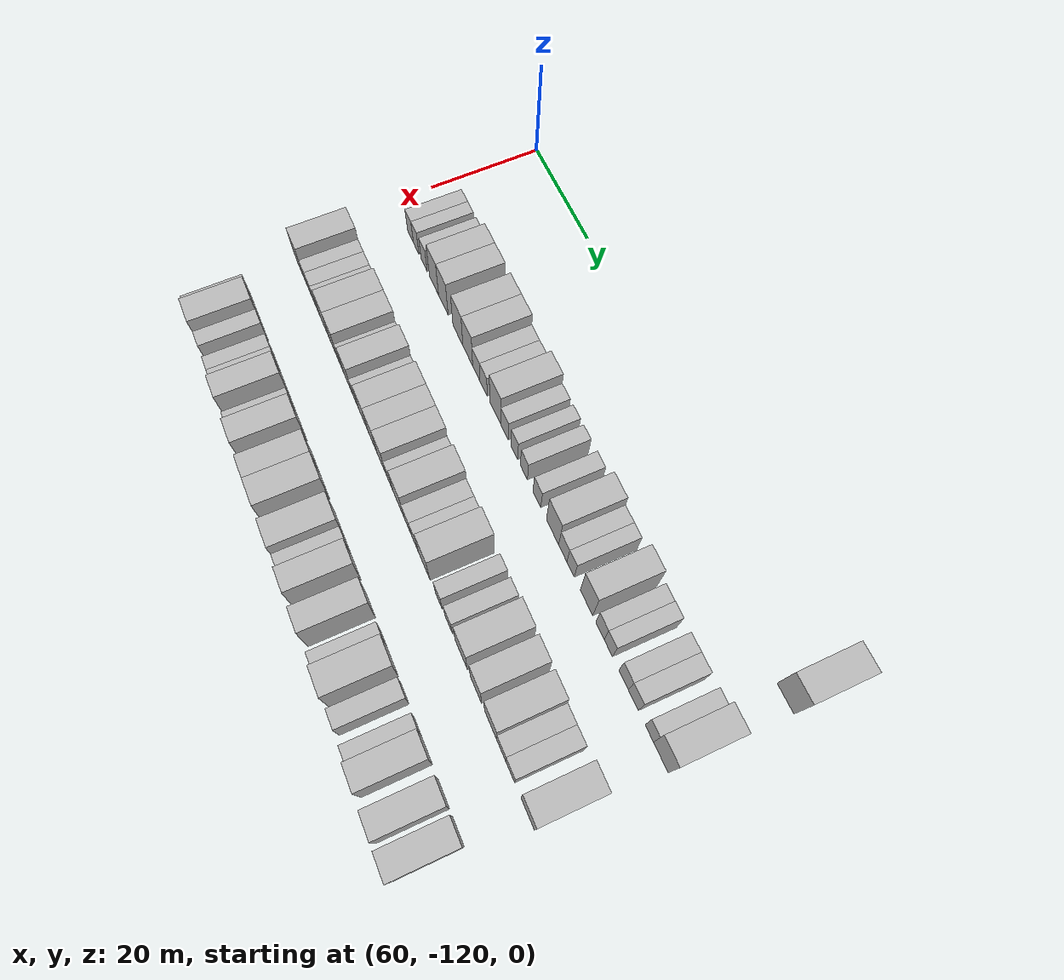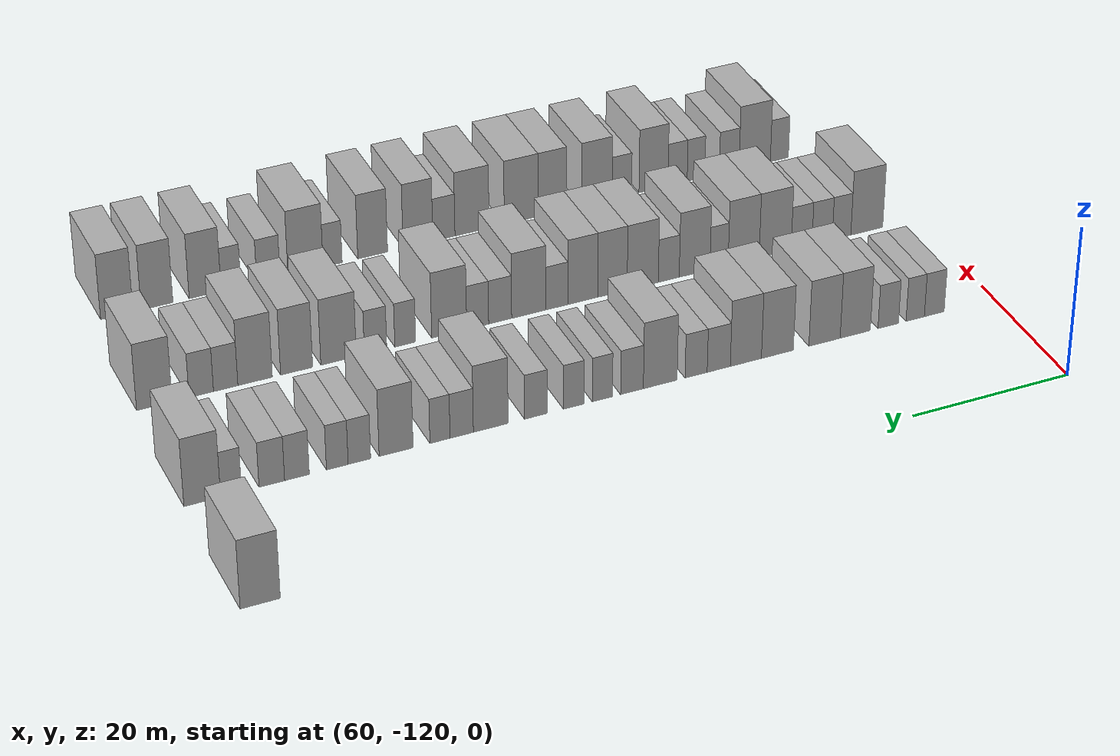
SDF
<sdf version="1.6">
 <world name="default">
  <model name="building_430">
   <static>1</static>
   <pose>63.0000 -21.8104 0 0.000000 0.000000 0.000000</pose>
   <link name="link">
    <pose>0 0 4.50 0 0 0</pose>
    <collision name="collision"><geometry><box><size>10.0000 4.4354 9.0000</size></box></geometry></collision>
    <visual name="visual">
     <cast_shadows>0</cast_shadows>
     <geometry><box><size>10.0000 4.4354 9.0000</size></box></geometry>
     <material>
      <script>
       <uri>model://HANNAS_wall/materials/scripts</uri>
       <uri>model://HANNAS_wall/materials/textures</uri>
       <name>vrc/HANNAS_wall</name>
      </script>
     </material>
    </visual>
   </link>
  </model>
  <model name="building_592">
   <static>1</static>
   <pose>82.0000 -111.9841 0 0.000000 0.000000 0.000000</pose>
   <link name="link">
    <pose>0 0 3.00 0 0 0</pose>
    <collision name="collision"><geometry><box><size>10.0000 2.6304 6.0000</size></box></geometry></collision>
    <visual name="visual">
     <cast_shadows>0</cast_shadows>
     <geometry><box><size>10.0000 2.6304 6.0000</size></box></geometry>
     <material>
      <script>
       <uri>model://HANNAS_wall/materials/scripts</uri>
       <uri>model://HANNAS_wall/materials/textures</uri>
       <name>vrc/HANNAS_wall</name>
      </script>
     </material>
    </visual>
   </link>
  </model>
  <model name="building_593">
   <static>1</static>
   <pose>82.0000 -109.4573 0 0.000000 0.000000 0.000000</pose>
   <link name="link">
    <pose>0 0 3.00 0 0 0</pose>
    <collision name="collision"><geometry><box><size>10.0000 2.4231 6.0000</size></box></geometry></collision>
    <visual name="visual">
     <cast_shadows>0</cast_shadows>
     <geometry><box><size>10.0000 2.4231 6.0000</size></box></geometry>
     <material>
      <script>
       <uri>model://HANNAS_wall/materials/scripts</uri>
       <uri>model://HANNAS_wall/materials/textures</uri>
       <name>vrc/HANNAS_wall</name>
      </script>
     </material>
    </visual>
   </link>
  </model>
  <model name="building_594">
   <static>1</static>
   <pose>82.0000 -105.8971 0 0.000000 0.000000 0.000000</pose>
   <link name="link">
    <pose>0 0 3.00 0 0 0</pose>
    <collision name="collision"><geometry><box><size>10.0000 2.6975 6.0000</size></box></geometry></collision>
    <visual name="visual">
     <cast_shadows>0</cast_shadows>
     <geometry><box><size>10.0000 2.6975 6.0000</size></box></geometry>
     <material>
      <script>
       <uri>model://HANNAS_wall/materials/scripts</uri>
       <uri>model://HANNAS_wall/materials/textures</uri>
       <name>vrc/HANNAS_wall</name>
      </script>
     </material>
    </visual>
   </link>
  </model>
  <model name="building_595">
   <static>1</static>
   <pose>82.0000 -101.5798 0 0.000000 0.000000 0.000000</pose>
   <link name="link">
    <pose>0 0 4.50 0 0 0</pose>
    <collision name="collision"><geometry><box><size>10.0000 3.9371 9.0000</size></box></geometry></collision>
    <visual name="visual">
     <cast_shadows>0</cast_shadows>
     <geometry><box><size>10.0000 3.9371 9.0000</size></box></geometry>
     <material>
      <script>
       <uri>model://HANNAS_wall/materials/scripts</uri>
       <uri>model://HANNAS_wall/materials/textures</uri>
       <name>vrc/HANNAS_wall</name>
      </script>
     </material>
    </visual>
   </link>
  </model>
  <model name="building_596">
   <static>1</static>
   <pose>82.0000 -97.5793 0 0.000000 0.000000 0.000000</pose>
   <link name="link">
    <pose>0 0 4.50 0 0 0</pose>
    <collision name="collision"><geometry><box><size>10.0000 4.0638 9.0000</size></box></geometry></collision>
    <visual name="visual">
     <cast_shadows>0</cast_shadows>
     <geometry><box><size>10.0000 4.0638 9.0000</size></box></geometry>
     <material>
      <script>
       <uri>model://HANNAS_wall/materials/scripts</uri>
       <uri>model://HANNAS_wall/materials/textures</uri>
       <name>vrc/HANNAS_wall</name>
      </script>
     </material>
    </visual>
   </link>
  </model>
  <model name="building_597">
   <static>1</static>
   <pose>82.0000 -91.4942 0 0.000000 0.000000 0.000000</pose>
   <link name="link">
    <pose>0 0 4.50 0 0 0</pose>
    <collision name="collision"><geometry><box><size>10.0000 4.1064 9.0000</size></box></geometry></collision>
    <visual name="visual">
     <cast_shadows>0</cast_shadows>
     <geometry><box><size>10.0000 4.1064 9.0000</size></box></geometry>
     <material>
      <script>
       <uri>model://HANNAS_wall/materials/scripts</uri>
       <uri>model://HANNAS_wall/materials/textures</uri>
       <name>vrc/HANNAS_wall</name>
      </script>
     </material>
    </visual>
   </link>
  </model>
  <model name="building_598">
   <static>1</static>
   <pose>82.0000 -87.4552 0 0.000000 0.000000 0.000000</pose>
   <link name="link">
    <pose>0 0 4.50 0 0 0</pose>
    <collision name="collision"><geometry><box><size>10.0000 3.9716 9.0000</size></box></geometry></collision>
    <visual name="visual">
     <cast_shadows>0</cast_shadows>
     <geometry><box><size>10.0000 3.9716 9.0000</size></box></geometry>
     <material>
      <script>
       <uri>model://HANNAS_wall/materials/scripts</uri>
       <uri>model://HANNAS_wall/materials/textures</uri>
       <name>vrc/HANNAS_wall</name>
      </script>
     </material>
    </visual>
   </link>
  </model>
  <model name="building_599">
   <static>1</static>
   <pose>82.0000 -84.0022 0 0.000000 0.000000 0.000000</pose>
   <link name="link">
    <pose>0 0 3.00 0 0 0</pose>
    <collision name="collision"><geometry><box><size>10.0000 2.9345 6.0000</size></box></geometry></collision>
    <visual name="visual">
     <cast_shadows>0</cast_shadows>
     <geometry><box><size>10.0000 2.9345 6.0000</size></box></geometry>
     <material>
      <script>
       <uri>model://HANNAS_wall/materials/scripts</uri>
       <uri>model://HANNAS_wall/materials/textures</uri>
       <name>vrc/HANNAS_wall</name>
      </script>
     </material>
    </visual>
   </link>
  </model>
  <model name="building_600">
   <static>1</static>
   <pose>82.0000 -81.1415 0 0.000000 0.000000 0.000000</pose>
   <link name="link">
    <pose>0 0 3.00 0 0 0</pose>
    <collision name="collision"><geometry><box><size>10.0000 2.7870 6.0000</size></box></geometry></collision>
    <visual name="visual">
     <cast_shadows>0</cast_shadows>
     <geometry><box><size>10.0000 2.7870 6.0000</size></box></geometry>
     <material>
      <script>
       <uri>model://HANNAS_wall/materials/scripts</uri>
       <uri>model://HANNAS_wall/materials/textures</uri>
       <name>vrc/HANNAS_wall</name>
      </script>
     </material>
    </visual>
   </link>
  </model>
  <model name="building_601">
   <static>1</static>
   <pose>82.0000 -76.6333 0 0.000000 0.000000 0.000000</pose>
   <link name="link">
    <pose>0 0 4.50 0 0 0</pose>
    <collision name="collision"><geometry><box><size>10.0000 4.2294 9.0000</size></box></geometry></collision>
    <visual name="visual">
     <cast_shadows>0</cast_shadows>
     <geometry><box><size>10.0000 4.2294 9.0000</size></box></geometry>
     <material>
      <script>
       <uri>model://HANNAS_wall/materials/scripts</uri>
       <uri>model://HANNAS_wall/materials/textures</uri>
       <name>vrc/HANNAS_wall</name>
      </script>
     </material>
    </visual>
   </link>
  </model>
  <model name="building_602">
   <static>1</static>
   <pose>82.0000 -73.0995 0 0.000000 0.000000 0.000000</pose>
   <link name="link">
    <pose>0 0 3.00 0 0 0</pose>
    <collision name="collision"><geometry><box><size>10.0000 2.8381 6.0000</size></box></geometry></collision>
    <visual name="visual">
     <cast_shadows>0</cast_shadows>
     <geometry><box><size>10.0000 2.8381 6.0000</size></box></geometry>
     <material>
      <script>
       <uri>model://HANNAS_wall/materials/scripts</uri>
       <uri>model://HANNAS_wall/materials/textures</uri>
       <name>vrc/HANNAS_wall</name>
      </script>
     </material>
    </visual>
   </link>
  </model>
  <model name="building_603">
   <static>1</static>
   <pose>82.0000 -69.4307 0 0.000000 0.000000 0.000000</pose>
   <link name="link">
    <pose>0 0 3.00 0 0 0</pose>
    <collision name="collision"><geometry><box><size>10.0000 2.4996 6.0000</size></box></geometry></collision>
    <visual name="visual">
     <cast_shadows>0</cast_shadows>
     <geometry><box><size>10.0000 2.4996 6.0000</size></box></geometry>
     <material>
      <script>
       <uri>model://HANNAS_wall/materials/scripts</uri>
       <uri>model://HANNAS_wall/materials/textures</uri>
       <name>vrc/HANNAS_wall</name>
      </script>
     </material>
    </visual>
   </link>
  </model>
  <model name="building_604">
   <static>1</static>
   <pose>82.0000 -65.9021 0 0.000000 0.000000 0.000000</pose>
   <link name="link">
    <pose>0 0 3.00 0 0 0</pose>
    <collision name="collision"><geometry><box><size>10.0000 2.5575 6.0000</size></box></geometry></collision>
    <visual name="visual">
     <cast_shadows>0</cast_shadows>
     <geometry><box><size>10.0000 2.5575 6.0000</size></box></geometry>
     <material>
      <script>
       <uri>model://HANNAS_wall/materials/scripts</uri>
       <uri>model://HANNAS_wall/materials/textures</uri>
       <name>vrc/HANNAS_wall</name>
      </script>
     </material>
    </visual>
   </link>
  </model>
  <model name="building_605">
   <static>1</static>
   <pose>82.0000 -61.2472 0 0.000000 0.000000 0.000000</pose>
   <link name="link">
    <pose>0 0 3.00 0 0 0</pose>
    <collision name="collision"><geometry><box><size>10.0000 2.7523 6.0000</size></box></geometry></collision>
    <visual name="visual">
     <cast_shadows>0</cast_shadows>
     <geometry><box><size>10.0000 2.7523 6.0000</size></box></geometry>
     <material>
      <script>
       <uri>model://HANNAS_wall/materials/scripts</uri>
       <uri>model://HANNAS_wall/materials/textures</uri>
       <name>vrc/HANNAS_wall</name>
      </script>
     </material>
    </visual>
   </link>
  </model>
  <model name="building_606">
   <static>1</static>
   <pose>82.0000 -55.7705 0 0.000000 0.000000 0.000000</pose>
   <link name="link">
    <pose>0 0 4.50 0 0 0</pose>
    <collision name="collision"><geometry><box><size>10.0000 4.2011 9.0000</size></box></geometry></collision>
    <visual name="visual">
     <cast_shadows>0</cast_shadows>
     <geometry><box><size>10.0000 4.2011 9.0000</size></box></geometry>
     <material>
      <script>
       <uri>model://HANNAS_wall/materials/scripts</uri>
       <uri>model://HANNAS_wall/materials/textures</uri>
       <name>vrc/HANNAS_wall</name>
      </script>
     </material>
    </visual>
   </link>
  </model>
  <model name="building_607">
   <static>1</static>
   <pose>82.0000 -52.2655 0 0.000000 0.000000 0.000000</pose>
   <link name="link">
    <pose>0 0 3.00 0 0 0</pose>
    <collision name="collision"><geometry><box><size>10.0000 2.8088 6.0000</size></box></geometry></collision>
    <visual name="visual">
     <cast_shadows>0</cast_shadows>
     <geometry><box><size>10.0000 2.8088 6.0000</size></box></geometry>
     <material>
      <script>
       <uri>model://HANNAS_wall/materials/scripts</uri>
       <uri>model://HANNAS_wall/materials/textures</uri>
       <name>vrc/HANNAS_wall</name>
      </script>
     </material>
    </visual>
   </link>
  </model>
  <model name="building_608">
   <static>1</static>
   <pose>82.0000 -49.6564 0 0.000000 0.000000 0.000000</pose>
   <link name="link">
    <pose>0 0 3.00 0 0 0</pose>
    <collision name="collision"><geometry><box><size>10.0000 2.4094 6.0000</size></box></geometry></collision>
    <visual name="visual">
     <cast_shadows>0</cast_shadows>
     <geometry><box><size>10.0000 2.4094 6.0000</size></box></geometry>
     <material>
      <script>
       <uri>model://HANNAS_wall/materials/scripts</uri>
       <uri>model://HANNAS_wall/materials/textures</uri>
       <name>vrc/HANNAS_wall</name>
      </script>
     </material>
    </visual>
   </link>
  </model>
  <model name="building_609">
   <static>1</static>
   <pose>82.0000 -44.4361 0 0.000000 0.000000 0.000000</pose>
   <link name="link">
    <pose>0 0 4.50 0 0 0</pose>
    <collision name="collision"><geometry><box><size>10.0000 4.0311 9.0000</size></box></geometry></collision>
    <visual name="visual">
     <cast_shadows>0</cast_shadows>
     <geometry><box><size>10.0000 4.0311 9.0000</size></box></geometry>
     <material>
      <script>
       <uri>model://HANNAS_wall/materials/scripts</uri>
       <uri>model://HANNAS_wall/materials/textures</uri>
       <name>vrc/HANNAS_wall</name>
      </script>
     </material>
    </visual>
   </link>
  </model>
  <model name="building_610">
   <static>1</static>
   <pose>82.0000 -40.0973 0 0.000000 0.000000 0.000000</pose>
   <link name="link">
    <pose>0 0 3.00 0 0 0</pose>
    <collision name="collision"><geometry><box><size>10.0000 2.6466 6.0000</size></box></geometry></collision>
    <visual name="visual">
     <cast_shadows>0</cast_shadows>
     <geometry><box><size>10.0000 2.6466 6.0000</size></box></geometry>
     <material>
      <script>
       <uri>model://HANNAS_wall/materials/scripts</uri>
       <uri>model://HANNAS_wall/materials/textures</uri>
       <name>vrc/HANNAS_wall</name>
      </script>
     </material>
    </visual>
   </link>
  </model>
  <model name="building_611">
   <static>1</static>
   <pose>82.0000 -37.5009 0 0.000000 0.000000 0.000000</pose>
   <link name="link">
    <pose>0 0 3.00 0 0 0</pose>
    <collision name="collision"><geometry><box><size>10.0000 2.5462 6.0000</size></box></geometry></collision>
    <visual name="visual">
     <cast_shadows>0</cast_shadows>
     <geometry><box><size>10.0000 2.5462 6.0000</size></box></geometry>
     <material>
      <script>
       <uri>model://HANNAS_wall/materials/scripts</uri>
       <uri>model://HANNAS_wall/materials/textures</uri>
       <name>vrc/HANNAS_wall</name>
      </script>
     </material>
    </visual>
   </link>
  </model>
  <model name="building_612">
   <static>1</static>
   <pose>82.0000 -32.7930 0 0.000000 0.000000 0.000000</pose>
   <link name="link">
    <pose>0 0 3.00 0 0 0</pose>
    <collision name="collision"><geometry><box><size>10.0000 2.8696 6.0000</size></box></geometry></collision>
    <visual name="visual">
     <cast_shadows>0</cast_shadows>
     <geometry><box><size>10.0000 2.8696 6.0000</size></box></geometry>
     <material>
      <script>
       <uri>model://HANNAS_wall/materials/scripts</uri>
       <uri>model://HANNAS_wall/materials/textures</uri>
       <name>vrc/HANNAS_wall</name>
      </script>
     </material>
    </visual>
   </link>
  </model>
  <model name="building_613">
   <static>1</static>
   <pose>82.0000 -29.8765 0 0.000000 0.000000 0.000000</pose>
   <link name="link">
    <pose>0 0 3.00 0 0 0</pose>
    <collision name="collision"><geometry><box><size>10.0000 2.9636 6.0000</size></box></geometry></collision>
    <visual name="visual">
     <cast_shadows>0</cast_shadows>
     <geometry><box><size>10.0000 2.9636 6.0000</size></box></geometry>
     <material>
      <script>
       <uri>model://HANNAS_wall/materials/scripts</uri>
       <uri>model://HANNAS_wall/materials/textures</uri>
       <name>vrc/HANNAS_wall</name>
      </script>
     </material>
    </visual>
   </link>
  </model>
  <model name="building_614">
   <static>1</static>
   <pose>82.0000 -25.1904 0 0.000000 0.000000 0.000000</pose>
   <link name="link">
    <pose>0 0 3.00 0 0 0</pose>
    <collision name="collision"><geometry><box><size>10.0000 2.4086 6.0000</size></box></geometry></collision>
    <visual name="visual">
     <cast_shadows>0</cast_shadows>
     <geometry><box><size>10.0000 2.4086 6.0000</size></box></geometry>
     <material>
      <script>
       <uri>model://HANNAS_wall/materials/scripts</uri>
       <uri>model://HANNAS_wall/materials/textures</uri>
       <name>vrc/HANNAS_wall</name>
      </script>
     </material>
    </visual>
   </link>
  </model>
  <model name="building_615">
   <static>1</static>
   <pose>82.0000 -21.8923 0 0.000000 0.000000 0.000000</pose>
   <link name="link">
    <pose>0 0 4.50 0 0 0</pose>
    <collision name="collision"><geometry><box><size>10.0000 4.1876 9.0000</size></box></geometry></collision>
    <visual name="visual">
     <cast_shadows>0</cast_shadows>
     <geometry><box><size>10.0000 4.1876 9.0000</size></box></geometry>
     <material>
      <script>
       <uri>model://HANNAS_wall/materials/scripts</uri>
       <uri>model://HANNAS_wall/materials/textures</uri>
       <name>vrc/HANNAS_wall</name>
      </script>
     </material>
    </visual>
   </link>
  </model>
  <model name="building_776">
   <static>1</static>
   <pose>101.0000 -113.0911 0 0.000000 0.000000 0.000000</pose>
   <link name="link">
    <pose>0 0 4.50 0 0 0</pose>
    <collision name="collision"><geometry><box><size>10.0000 4.3536 9.0000</size></box></geometry></collision>
    <visual name="visual">
     <cast_shadows>0</cast_shadows>
     <geometry><box><size>10.0000 4.3536 9.0000</size></box></geometry>
     <material>
      <script>
       <uri>model://HANNAS_wall/materials/scripts</uri>
       <uri>model://HANNAS_wall/materials/textures</uri>
       <name>vrc/HANNAS_wall</name>
      </script>
     </material>
    </visual>
   </link>
  </model>
  <model name="building_777">
   <static>1</static>
   <pose>101.0000 -109.6496 0 0.000000 0.000000 0.000000</pose>
   <link name="link">
    <pose>0 0 3.00 0 0 0</pose>
    <collision name="collision"><geometry><box><size>10.0000 2.5293 6.0000</size></box></geometry></collision>
    <visual name="visual">
     <cast_shadows>0</cast_shadows>
     <geometry><box><size>10.0000 2.5293 6.0000</size></box></geometry>
     <material>
      <script>
       <uri>model://HANNAS_wall/materials/scripts</uri>
       <uri>model://HANNAS_wall/materials/textures</uri>
       <name>vrc/HANNAS_wall</name>
      </script>
     </material>
    </visual>
   </link>
  </model>
  <model name="building_778">
   <static>1</static>
   <pose>101.0000 -107.0115 0 0.000000 0.000000 0.000000</pose>
   <link name="link">
    <pose>0 0 3.00 0 0 0</pose>
    <collision name="collision"><geometry><box><size>10.0000 2.7470 6.0000</size></box></geometry></collision>
    <visual name="visual">
     <cast_shadows>0</cast_shadows>
     <geometry><box><size>10.0000 2.7470 6.0000</size></box></geometry>
     <material>
      <script>
       <uri>model://HANNAS_wall/materials/scripts</uri>
       <uri>model://HANNAS_wall/materials/textures</uri>
       <name>vrc/HANNAS_wall</name>
      </script>
     </material>
    </visual>
   </link>
  </model>
  <model name="building_779">
   <static>1</static>
   <pose>101.0000 -104.2323 0 0.000000 0.000000 0.000000</pose>
   <link name="link">
    <pose>0 0 3.00 0 0 0</pose>
    <collision name="collision"><geometry><box><size>10.0000 2.8114 6.0000</size></box></geometry></collision>
    <visual name="visual">
     <cast_shadows>0</cast_shadows>
     <geometry><box><size>10.0000 2.8114 6.0000</size></box></geometry>
     <material>
      <script>
       <uri>model://HANNAS_wall/materials/scripts</uri>
       <uri>model://HANNAS_wall/materials/textures</uri>
       <name>vrc/HANNAS_wall</name>
      </script>
     </material>
    </visual>
   </link>
  </model>
  <model name="building_780">
   <static>1</static>
   <pose>101.0000 -100.6856 0 0.000000 0.000000 0.000000</pose>
   <link name="link">
    <pose>0 0 4.50 0 0 0</pose>
    <collision name="collision"><geometry><box><size>10.0000 4.2820 9.0000</size></box></geometry></collision>
    <visual name="visual">
     <cast_shadows>0</cast_shadows>
     <geometry><box><size>10.0000 4.2820 9.0000</size></box></geometry>
     <material>
      <script>
       <uri>model://HANNAS_wall/materials/scripts</uri>
       <uri>model://HANNAS_wall/materials/textures</uri>
       <name>vrc/HANNAS_wall</name>
      </script>
     </material>
    </visual>
   </link>
  </model>
  <model name="building_781">
   <static>1</static>
   <pose>101.0000 -96.4769 0 0.000000 0.000000 0.000000</pose>
   <link name="link">
    <pose>0 0 4.50 0 0 0</pose>
    <collision name="collision"><geometry><box><size>10.0000 4.1356 9.0000</size></box></geometry></collision>
    <visual name="visual">
     <cast_shadows>0</cast_shadows>
     <geometry><box><size>10.0000 4.1356 9.0000</size></box></geometry>
     <material>
      <script>
       <uri>model://HANNAS_wall/materials/scripts</uri>
       <uri>model://HANNAS_wall/materials/textures</uri>
       <name>vrc/HANNAS_wall</name>
      </script>
     </material>
    </visual>
   </link>
  </model>
  <model name="building_782">
   <static>1</static>
   <pose>101.0000 -93.2039 0 0.000000 0.000000 0.000000</pose>
   <link name="link">
    <pose>0 0 3.00 0 0 0</pose>
    <collision name="collision"><geometry><box><size>10.0000 2.4103 6.0000</size></box></geometry></collision>
    <visual name="visual">
     <cast_shadows>0</cast_shadows>
     <geometry><box><size>10.0000 2.4103 6.0000</size></box></geometry>
     <material>
      <script>
       <uri>model://HANNAS_wall/materials/scripts</uri>
       <uri>model://HANNAS_wall/materials/textures</uri>
       <name>vrc/HANNAS_wall</name>
      </script>
     </material>
    </visual>
   </link>
  </model>
  <model name="building_783">
   <static>1</static>
   <pose>101.0000 -89.9806 0 0.000000 0.000000 0.000000</pose>
   <link name="link">
    <pose>0 0 4.50 0 0 0</pose>
    <collision name="collision"><geometry><box><size>10.0000 4.0363 9.0000</size></box></geometry></collision>
    <visual name="visual">
     <cast_shadows>0</cast_shadows>
     <geometry><box><size>10.0000 4.0363 9.0000</size></box></geometry>
     <material>
      <script>
       <uri>model://HANNAS_wall/materials/scripts</uri>
       <uri>model://HANNAS_wall/materials/textures</uri>
       <name>vrc/HANNAS_wall</name>
      </script>
     </material>
    </visual>
   </link>
  </model>
  <model name="building_784">
   <static>1</static>
   <pose>101.0000 -86.5905 0 0.000000 0.000000 0.000000</pose>
   <link name="link">
    <pose>0 0 3.00 0 0 0</pose>
    <collision name="collision"><geometry><box><size>10.0000 2.7439 6.0000</size></box></geometry></collision>
    <visual name="visual">
     <cast_shadows>0</cast_shadows>
     <geometry><box><size>10.0000 2.7439 6.0000</size></box></geometry>
     <material>
      <script>
       <uri>model://HANNAS_wall/materials/scripts</uri>
       <uri>model://HANNAS_wall/materials/textures</uri>
       <name>vrc/HANNAS_wall</name>
      </script>
     </material>
    </visual>
   </link>
  </model>
  <model name="building_785">
   <static>1</static>
   <pose>101.0000 -83.1874 0 0.000000 0.000000 0.000000</pose>
   <link name="link">
    <pose>0 0 4.50 0 0 0</pose>
    <collision name="collision"><geometry><box><size>10.0000 4.0622 9.0000</size></box></geometry></collision>
    <visual name="visual">
     <cast_shadows>0</cast_shadows>
     <geometry><box><size>10.0000 4.0622 9.0000</size></box></geometry>
     <material>
      <script>
       <uri>model://HANNAS_wall/materials/scripts</uri>
       <uri>model://HANNAS_wall/materials/textures</uri>
       <name>vrc/HANNAS_wall</name>
      </script>
     </material>
    </visual>
   </link>
  </model>
  <model name="building_786">
   <static>1</static>
   <pose>101.0000 -79.2602 0 0.000000 0.000000 0.000000</pose>
   <link name="link">
    <pose>0 0 4.50 0 0 0</pose>
    <collision name="collision"><geometry><box><size>10.0000 3.7922 9.0000</size></box></geometry></collision>
    <visual name="visual">
     <cast_shadows>0</cast_shadows>
     <geometry><box><size>10.0000 3.7922 9.0000</size></box></geometry>
     <material>
      <script>
       <uri>model://HANNAS_wall/materials/scripts</uri>
       <uri>model://HANNAS_wall/materials/textures</uri>
       <name>vrc/HANNAS_wall</name>
      </script>
     </material>
    </visual>
   </link>
  </model>
  <model name="building_787">
   <static>1</static>
   <pose>101.0000 -75.4360 0 0.000000 0.000000 0.000000</pose>
   <link name="link">
    <pose>0 0 4.50 0 0 0</pose>
    <collision name="collision"><geometry><box><size>10.0000 3.8562 9.0000</size></box></geometry></collision>
    <visual name="visual">
     <cast_shadows>0</cast_shadows>
     <geometry><box><size>10.0000 3.8562 9.0000</size></box></geometry>
     <material>
      <script>
       <uri>model://HANNAS_wall/materials/scripts</uri>
       <uri>model://HANNAS_wall/materials/textures</uri>
       <name>vrc/HANNAS_wall</name>
      </script>
     </material>
    </visual>
   </link>
  </model>
  <model name="building_788">
   <static>1</static>
   <pose>101.0000 -72.1108 0 0.000000 0.000000 0.000000</pose>
   <link name="link">
    <pose>0 0 3.00 0 0 0</pose>
    <collision name="collision"><geometry><box><size>10.0000 2.7942 6.0000</size></box></geometry></collision>
    <visual name="visual">
     <cast_shadows>0</cast_shadows>
     <geometry><box><size>10.0000 2.7942 6.0000</size></box></geometry>
     <material>
      <script>
       <uri>model://HANNAS_wall/materials/scripts</uri>
       <uri>model://HANNAS_wall/materials/textures</uri>
       <name>vrc/HANNAS_wall</name>
      </script>
     </material>
    </visual>
   </link>
  </model>
  <model name="building_789">
   <static>1</static>
   <pose>101.0000 -68.5274 0 0.000000 0.000000 0.000000</pose>
   <link name="link">
    <pose>0 0 4.50 0 0 0</pose>
    <collision name="collision"><geometry><box><size>10.0000 4.3726 9.0000</size></box></geometry></collision>
    <visual name="visual">
     <cast_shadows>0</cast_shadows>
     <geometry><box><size>10.0000 4.3726 9.0000</size></box></geometry>
     <material>
      <script>
       <uri>model://HANNAS_wall/materials/scripts</uri>
       <uri>model://HANNAS_wall/materials/textures</uri>
       <name>vrc/HANNAS_wall</name>
      </script>
     </material>
    </visual>
   </link>
  </model>
  <model name="building_790">
   <static>1</static>
   <pose>101.0000 -64.8857 0 0.000000 0.000000 0.000000</pose>
   <link name="link">
    <pose>0 0 3.00 0 0 0</pose>
    <collision name="collision"><geometry><box><size>10.0000 2.9107 6.0000</size></box></geometry></collision>
    <visual name="visual">
     <cast_shadows>0</cast_shadows>
     <geometry><box><size>10.0000 2.9107 6.0000</size></box></geometry>
     <material>
      <script>
       <uri>model://HANNAS_wall/materials/scripts</uri>
       <uri>model://HANNAS_wall/materials/textures</uri>
       <name>vrc/HANNAS_wall</name>
      </script>
     </material>
    </visual>
   </link>
  </model>
  <model name="building_791">
   <static>1</static>
   <pose>101.0000 -62.0494 0 0.000000 0.000000 0.000000</pose>
   <link name="link">
    <pose>0 0 3.00 0 0 0</pose>
    <collision name="collision"><geometry><box><size>10.0000 2.7619 6.0000</size></box></geometry></collision>
    <visual name="visual">
     <cast_shadows>0</cast_shadows>
     <geometry><box><size>10.0000 2.7619 6.0000</size></box></geometry>
     <material>
      <script>
       <uri>model://HANNAS_wall/materials/scripts</uri>
       <uri>model://HANNAS_wall/materials/textures</uri>
       <name>vrc/HANNAS_wall</name>
      </script>
     </material>
    </visual>
   </link>
  </model>
  <model name="building_792">
   <static>1</static>
   <pose>101.0000 -58.4766 0 0.000000 0.000000 0.000000</pose>
   <link name="link">
    <pose>0 0 4.50 0 0 0</pose>
    <collision name="collision"><geometry><box><size>10.0000 4.3837 9.0000</size></box></geometry></collision>
    <visual name="visual">
     <cast_shadows>0</cast_shadows>
     <geometry><box><size>10.0000 4.3837 9.0000</size></box></geometry>
     <material>
      <script>
       <uri>model://HANNAS_wall/materials/scripts</uri>
       <uri>model://HANNAS_wall/materials/textures</uri>
       <name>vrc/HANNAS_wall</name>
      </script>
     </material>
    </visual>
   </link>
  </model>
  <model name="building_793">
   <static>1</static>
   <pose>101.0000 -52.9941 0 0.000000 0.000000 0.000000</pose>
   <link name="link">
    <pose>0 0 3.00 0 0 0</pose>
    <collision name="collision"><geometry><box><size>10.0000 2.5813 6.0000</size></box></geometry></collision>
    <visual name="visual">
     <cast_shadows>0</cast_shadows>
     <geometry><box><size>10.0000 2.5813 6.0000</size></box></geometry>
     <material>
      <script>
       <uri>model://HANNAS_wall/materials/scripts</uri>
       <uri>model://HANNAS_wall/materials/textures</uri>
       <name>vrc/HANNAS_wall</name>
      </script>
     </material>
    </visual>
   </link>
  </model>
  <model name="building_794">
   <static>1</static>
   <pose>101.0000 -49.3255 0 0.000000 0.000000 0.000000</pose>
   <link name="link">
    <pose>0 0 3.00 0 0 0</pose>
    <collision name="collision"><geometry><box><size>10.0000 2.7559 6.0000</size></box></geometry></collision>
    <visual name="visual">
     <cast_shadows>0</cast_shadows>
     <geometry><box><size>10.0000 2.7559 6.0000</size></box></geometry>
     <material>
      <script>
       <uri>model://HANNAS_wall/materials/scripts</uri>
       <uri>model://HANNAS_wall/materials/textures</uri>
       <name>vrc/HANNAS_wall</name>
      </script>
     </material>
    </visual>
   </link>
  </model>
  <model name="building_795">
   <static>1</static>
   <pose>101.0000 -44.7813 0 0.000000 0.000000 0.000000</pose>
   <link name="link">
    <pose>0 0 4.50 0 0 0</pose>
    <collision name="collision"><geometry><box><size>10.0000 4.3323 9.0000</size></box></geometry></collision>
    <visual name="visual">
     <cast_shadows>0</cast_shadows>
     <geometry><box><size>10.0000 4.3323 9.0000</size></box></geometry>
     <material>
      <script>
       <uri>model://HANNAS_wall/materials/scripts</uri>
       <uri>model://HANNAS_wall/materials/textures</uri>
       <name>vrc/HANNAS_wall</name>
      </script>
     </material>
    </visual>
   </link>
  </model>
  <model name="building_796">
   <static>1</static>
   <pose>101.0000 -39.6713 0 0.000000 0.000000 0.000000</pose>
   <link name="link">
    <pose>0 0 4.50 0 0 0</pose>
    <collision name="collision"><geometry><box><size>10.0000 3.8878 9.0000</size></box></geometry></collision>
    <visual name="visual">
     <cast_shadows>0</cast_shadows>
     <geometry><box><size>10.0000 3.8878 9.0000</size></box></geometry>
     <material>
      <script>
       <uri>model://HANNAS_wall/materials/scripts</uri>
       <uri>model://HANNAS_wall/materials/textures</uri>
       <name>vrc/HANNAS_wall</name>
      </script>
     </material>
    </visual>
   </link>
  </model>
  <model name="building_797">
   <static>1</static>
   <pose>101.0000 -34.6546 0 0.000000 0.000000 0.000000</pose>
   <link name="link">
    <pose>0 0 4.50 0 0 0</pose>
    <collision name="collision"><geometry><box><size>10.0000 4.1456 9.0000</size></box></geometry></collision>
    <visual name="visual">
     <cast_shadows>0</cast_shadows>
     <geometry><box><size>10.0000 4.1456 9.0000</size></box></geometry>
     <material>
      <script>
       <uri>model://HANNAS_wall/materials/scripts</uri>
       <uri>model://HANNAS_wall/materials/textures</uri>
       <name>vrc/HANNAS_wall</name>
      </script>
     </material>
    </visual>
   </link>
  </model>
  <model name="building_798">
   <static>1</static>
   <pose>101.0000 -31.1234 0 0.000000 0.000000 0.000000</pose>
   <link name="link">
    <pose>0 0 3.00 0 0 0</pose>
    <collision name="collision"><geometry><box><size>10.0000 2.9167 6.0000</size></box></geometry></collision>
    <visual name="visual">
     <cast_shadows>0</cast_shadows>
     <geometry><box><size>10.0000 2.9167 6.0000</size></box></geometry>
     <material>
      <script>
       <uri>model://HANNAS_wall/materials/scripts</uri>
       <uri>model://HANNAS_wall/materials/textures</uri>
       <name>vrc/HANNAS_wall</name>
      </script>
     </material>
    </visual>
   </link>
  </model>
  <model name="building_799">
   <static>1</static>
   <pose>101.0000 -28.2102 0 0.000000 0.000000 0.000000</pose>
   <link name="link">
    <pose>0 0 3.00 0 0 0</pose>
    <collision name="collision"><geometry><box><size>10.0000 2.9098 6.0000</size></box></geometry></collision>
    <visual name="visual">
     <cast_shadows>0</cast_shadows>
     <geometry><box><size>10.0000 2.9098 6.0000</size></box></geometry>
     <material>
      <script>
       <uri>model://HANNAS_wall/materials/scripts</uri>
       <uri>model://HANNAS_wall/materials/textures</uri>
       <name>vrc/HANNAS_wall</name>
      </script>
     </material>
    </visual>
   </link>
  </model>
  <model name="building_800">
   <static>1</static>
   <pose>101.0000 -22.6561 0 0.000000 0.000000 0.000000</pose>
   <link name="link">
    <pose>0 0 4.50 0 0 0</pose>
    <collision name="collision"><geometry><box><size>10.0000 4.1983 9.0000</size></box></geometry></collision>
    <visual name="visual">
     <cast_shadows>0</cast_shadows>
     <geometry><box><size>10.0000 4.1983 9.0000</size></box></geometry>
     <material>
      <script>
       <uri>model://HANNAS_wall/materials/scripts</uri>
       <uri>model://HANNAS_wall/materials/textures</uri>
       <name>vrc/HANNAS_wall</name>
      </script>
     </material>
    </visual>
   </link>
  </model>
  <model name="building_954">
   <static>1</static>
   <pose>120.0000 -110.7597 0 0.000000 0.000000 0.000000</pose>
   <link name="link">
    <pose>0 0 3.00 0 0 0</pose>
    <collision name="collision"><geometry><box><size>10.0000 2.5234 6.0000</size></box></geometry></collision>
    <visual name="visual">
     <cast_shadows>0</cast_shadows>
     <geometry><box><size>10.0000 2.5234 6.0000</size></box></geometry>
     <material>
      <script>
       <uri>model://HANNAS_wall/materials/scripts</uri>
       <uri>model://HANNAS_wall/materials/textures</uri>
       <name>vrc/HANNAS_wall</name>
      </script>
     </material>
    </visual>
   </link>
  </model>
  <model name="building_955">
   <static>1</static>
   <pose>120.0000 -107.3192 0 0.000000 0.000000 0.000000</pose>
   <link name="link">
    <pose>0 0 4.50 0 0 0</pose>
    <collision name="collision"><geometry><box><size>10.0000 4.3575 9.0000</size></box></geometry></collision>
    <visual name="visual">
     <cast_shadows>0</cast_shadows>
     <geometry><box><size>10.0000 4.3575 9.0000</size></box></geometry>
     <material>
      <script>
       <uri>model://HANNAS_wall/materials/scripts</uri>
       <uri>model://HANNAS_wall/materials/textures</uri>
       <name>vrc/HANNAS_wall</name>
      </script>
     </material>
    </visual>
   </link>
  </model>
  <model name="building_956">
   <static>1</static>
   <pose>120.0000 -103.7753 0 0.000000 0.000000 0.000000</pose>
   <link name="link">
    <pose>0 0 3.00 0 0 0</pose>
    <collision name="collision"><geometry><box><size>10.0000 2.7304 6.0000</size></box></geometry></collision>
    <visual name="visual">
     <cast_shadows>0</cast_shadows>
     <geometry><box><size>10.0000 2.7304 6.0000</size></box></geometry>
     <material>
      <script>
       <uri>model://HANNAS_wall/materials/scripts</uri>
       <uri>model://HANNAS_wall/materials/textures</uri>
       <name>vrc/HANNAS_wall</name>
      </script>
     </material>
    </visual>
   </link>
  </model>
  <model name="building_957">
   <static>1</static>
   <pose>120.0000 -99.2019 0 0.000000 0.000000 0.000000</pose>
   <link name="link">
    <pose>0 0 3.00 0 0 0</pose>
    <collision name="collision"><geometry><box><size>10.0000 2.4163 6.0000</size></box></geometry></collision>
    <visual name="visual">
     <cast_shadows>0</cast_shadows>
     <geometry><box><size>10.0000 2.4163 6.0000</size></box></geometry>
     <material>
      <script>
       <uri>model://HANNAS_wall/materials/scripts</uri>
       <uri>model://HANNAS_wall/materials/textures</uri>
       <name>vrc/HANNAS_wall</name>
      </script>
     </material>
    </visual>
   </link>
  </model>
  <model name="building_958">
   <static>1</static>
   <pose>120.0000 -96.6766 0 0.000000 0.000000 0.000000</pose>
   <link name="link">
    <pose>0 0 3.00 0 0 0</pose>
    <collision name="collision"><geometry><box><size>10.0000 2.6343 6.0000</size></box></geometry></collision>
    <visual name="visual">
     <cast_shadows>0</cast_shadows>
     <geometry><box><size>10.0000 2.6343 6.0000</size></box></geometry>
     <material>
      <script>
       <uri>model://HANNAS_wall/materials/scripts</uri>
       <uri>model://HANNAS_wall/materials/textures</uri>
       <name>vrc/HANNAS_wall</name>
      </script>
     </material>
    </visual>
   </link>
  </model>
  <model name="building_959">
   <static>1</static>
   <pose>120.0000 -93.3914 0 0.000000 0.000000 0.000000</pose>
   <link name="link">
    <pose>0 0 4.50 0 0 0</pose>
    <collision name="collision"><geometry><box><size>10.0000 3.9360 9.0000</size></box></geometry></collision>
    <visual name="visual">
     <cast_shadows>0</cast_shadows>
     <geometry><box><size>10.0000 3.9360 9.0000</size></box></geometry>
     <material>
      <script>
       <uri>model://HANNAS_wall/materials/scripts</uri>
       <uri>model://HANNAS_wall/materials/textures</uri>
       <name>vrc/HANNAS_wall</name>
      </script>
     </material>
    </visual>
   </link>
  </model>
  <model name="building_960">
   <static>1</static>
   <pose>120.0000 -89.1138 0 0.000000 0.000000 0.000000</pose>
   <link name="link">
    <pose>0 0 3.00 0 0 0</pose>
    <collision name="collision"><geometry><box><size>10.0000 2.6192 6.0000</size></box></geometry></collision>
    <visual name="visual">
     <cast_shadows>0</cast_shadows>
     <geometry><box><size>10.0000 2.6192 6.0000</size></box></geometry>
     <material>
      <script>
       <uri>model://HANNAS_wall/materials/scripts</uri>
       <uri>model://HANNAS_wall/materials/textures</uri>
       <name>vrc/HANNAS_wall</name>
      </script>
     </material>
    </visual>
   </link>
  </model>
  <model name="building_961">
   <static>1</static>
   <pose>120.0000 -85.7348 0 0.000000 0.000000 0.000000</pose>
   <link name="link">
    <pose>0 0 4.50 0 0 0</pose>
    <collision name="collision"><geometry><box><size>10.0000 4.1389 9.0000</size></box></geometry></collision>
    <visual name="visual">
     <cast_shadows>0</cast_shadows>
     <geometry><box><size>10.0000 4.1389 9.0000</size></box></geometry>
     <material>
      <script>
       <uri>model://HANNAS_wall/materials/scripts</uri>
       <uri>model://HANNAS_wall/materials/textures</uri>
       <name>vrc/HANNAS_wall</name>
      </script>
     </material>
    </visual>
   </link>
  </model>
  <model name="building_962">
   <static>1</static>
   <pose>120.0000 -79.7803 0 0.000000 0.000000 0.000000</pose>
   <link name="link">
    <pose>0 0 4.50 0 0 0</pose>
    <collision name="collision"><geometry><box><size>10.0000 3.7701 9.0000</size></box></geometry></collision>
    <visual name="visual">
     <cast_shadows>0</cast_shadows>
     <geometry><box><size>10.0000 3.7701 9.0000</size></box></geometry>
     <material>
      <script>
       <uri>model://HANNAS_wall/materials/scripts</uri>
       <uri>model://HANNAS_wall/materials/textures</uri>
       <name>vrc/HANNAS_wall</name>
      </script>
     </material>
    </visual>
   </link>
  </model>
  <model name="building_963">
   <static>1</static>
   <pose>120.0000 -75.6494 0 0.000000 0.000000 0.000000</pose>
   <link name="link">
    <pose>0 0 4.50 0 0 0</pose>
    <collision name="collision"><geometry><box><size>10.0000 4.4916 9.0000</size></box></geometry></collision>
    <visual name="visual">
     <cast_shadows>0</cast_shadows>
     <geometry><box><size>10.0000 4.4916 9.0000</size></box></geometry>
     <material>
      <script>
       <uri>model://HANNAS_wall/materials/scripts</uri>
       <uri>model://HANNAS_wall/materials/textures</uri>
       <name>vrc/HANNAS_wall</name>
      </script>
     </material>
    </visual>
   </link>
  </model>
  <model name="building_964">
   <static>1</static>
   <pose>120.0000 -69.1663 0 0.000000 0.000000 0.000000</pose>
   <link name="link">
    <pose>0 0 4.50 0 0 0</pose>
    <collision name="collision"><geometry><box><size>10.0000 4.4746 9.0000</size></box></geometry></collision>
    <visual name="visual">
     <cast_shadows>0</cast_shadows>
     <geometry><box><size>10.0000 4.4746 9.0000</size></box></geometry>
     <material>
      <script>
       <uri>model://HANNAS_wall/materials/scripts</uri>
       <uri>model://HANNAS_wall/materials/textures</uri>
       <name>vrc/HANNAS_wall</name>
      </script>
     </material>
    </visual>
   </link>
  </model>
  <model name="building_965">
   <static>1</static>
   <pose>120.0000 -65.4870 0 0.000000 0.000000 0.000000</pose>
   <link name="link">
    <pose>0 0 3.00 0 0 0</pose>
    <collision name="collision"><geometry><box><size>10.0000 2.8839 6.0000</size></box></geometry></collision>
    <visual name="visual">
     <cast_shadows>0</cast_shadows>
     <geometry><box><size>10.0000 2.8839 6.0000</size></box></geometry>
     <material>
      <script>
       <uri>model://HANNAS_wall/materials/scripts</uri>
       <uri>model://HANNAS_wall/materials/textures</uri>
       <name>vrc/HANNAS_wall</name>
      </script>
     </material>
    </visual>
   </link>
  </model>
  <model name="building_966">
   <static>1</static>
   <pose>120.0000 -62.1171 0 0.000000 0.000000 0.000000</pose>
   <link name="link">
    <pose>0 0 4.50 0 0 0</pose>
    <collision name="collision"><geometry><box><size>10.0000 3.8559 9.0000</size></box></geometry></collision>
    <visual name="visual">
     <cast_shadows>0</cast_shadows>
     <geometry><box><size>10.0000 3.8559 9.0000</size></box></geometry>
     <material>
      <script>
       <uri>model://HANNAS_wall/materials/scripts</uri>
       <uri>model://HANNAS_wall/materials/textures</uri>
       <name>vrc/HANNAS_wall</name>
      </script>
     </material>
    </visual>
   </link>
  </model>
  <model name="building_967">
   <static>1</static>
   <pose>120.0000 -56.2773 0 0.000000 0.000000 0.000000</pose>
   <link name="link">
    <pose>0 0 4.50 0 0 0</pose>
    <collision name="collision"><geometry><box><size>10.0000 3.8238 9.0000</size></box></geometry></collision>
    <visual name="visual">
     <cast_shadows>0</cast_shadows>
     <geometry><box><size>10.0000 3.8238 9.0000</size></box></geometry>
     <material>
      <script>
       <uri>model://HANNAS_wall/materials/scripts</uri>
       <uri>model://HANNAS_wall/materials/textures</uri>
       <name>vrc/HANNAS_wall</name>
      </script>
     </material>
    </visual>
   </link>
  </model>
  <model name="building_968">
   <static>1</static>
   <pose>120.0000 -51.1529 0 0.000000 0.000000 0.000000</pose>
   <link name="link">
    <pose>0 0 3.00 0 0 0</pose>
    <collision name="collision"><geometry><box><size>10.0000 2.4249 6.0000</size></box></geometry></collision>
    <visual name="visual">
     <cast_shadows>0</cast_shadows>
     <geometry><box><size>10.0000 2.4249 6.0000</size></box></geometry>
     <material>
      <script>
       <uri>model://HANNAS_wall/materials/scripts</uri>
       <uri>model://HANNAS_wall/materials/textures</uri>
       <name>vrc/HANNAS_wall</name>
      </script>
     </material>
    </visual>
   </link>
  </model>
  <model name="building_969">
   <static>1</static>
   <pose>120.0000 -47.7141 0 0.000000 0.000000 0.000000</pose>
   <link name="link">
    <pose>0 0 4.50 0 0 0</pose>
    <collision name="collision"><geometry><box><size>10.0000 4.4527 9.0000</size></box></geometry></collision>
    <visual name="visual">
     <cast_shadows>0</cast_shadows>
     <geometry><box><size>10.0000 4.4527 9.0000</size></box></geometry>
     <material>
      <script>
       <uri>model://HANNAS_wall/materials/scripts</uri>
       <uri>model://HANNAS_wall/materials/textures</uri>
       <name>vrc/HANNAS_wall</name>
      </script>
     </material>
    </visual>
   </link>
  </model>
  <model name="building_970">
   <static>1</static>
   <pose>120.0000 -43.0259 0 0.000000 0.000000 0.000000</pose>
   <link name="link">
    <pose>0 0 3.00 0 0 0</pose>
    <collision name="collision"><geometry><box><size>10.0000 2.9237 6.0000</size></box></geometry></collision>
    <visual name="visual">
     <cast_shadows>0</cast_shadows>
     <geometry><box><size>10.0000 2.9237 6.0000</size></box></geometry>
     <material>
      <script>
       <uri>model://HANNAS_wall/materials/scripts</uri>
       <uri>model://HANNAS_wall/materials/textures</uri>
       <name>vrc/HANNAS_wall</name>
      </script>
     </material>
    </visual>
   </link>
  </model>
  <model name="building_971">
   <static>1</static>
   <pose>120.0000 -38.3330 0 0.000000 0.000000 0.000000</pose>
   <link name="link">
    <pose>0 0 3.00 0 0 0</pose>
    <collision name="collision"><geometry><box><size>10.0000 2.4620 6.0000</size></box></geometry></collision>
    <visual name="visual">
     <cast_shadows>0</cast_shadows>
     <geometry><box><size>10.0000 2.4620 6.0000</size></box></geometry>
     <material>
      <script>
       <uri>model://HANNAS_wall/materials/scripts</uri>
       <uri>model://HANNAS_wall/materials/textures</uri>
       <name>vrc/HANNAS_wall</name>
      </script>
     </material>
    </visual>
   </link>
  </model>
  <model name="building_972">
   <static>1</static>
   <pose>120.0000 -35.1195 0 0.000000 0.000000 0.000000</pose>
   <link name="link">
    <pose>0 0 4.50 0 0 0</pose>
    <collision name="collision"><geometry><box><size>10.0000 3.9651 9.0000</size></box></geometry></collision>
    <visual name="visual">
     <cast_shadows>0</cast_shadows>
     <geometry><box><size>10.0000 3.9651 9.0000</size></box></geometry>
     <material>
      <script>
       <uri>model://HANNAS_wall/materials/scripts</uri>
       <uri>model://HANNAS_wall/materials/textures</uri>
       <name>vrc/HANNAS_wall</name>
      </script>
     </material>
    </visual>
   </link>
  </model>
  <model name="building_973">
   <static>1</static>
   <pose>120.0000 -29.1852 0 0.000000 0.000000 0.000000</pose>
   <link name="link">
    <pose>0 0 4.50 0 0 0</pose>
    <collision name="collision"><geometry><box><size>10.0000 3.9034 9.0000</size></box></geometry></collision>
    <visual name="visual">
     <cast_shadows>0</cast_shadows>
     <geometry><box><size>10.0000 3.9034 9.0000</size></box></geometry>
     <material>
      <script>
       <uri>model://HANNAS_wall/materials/scripts</uri>
       <uri>model://HANNAS_wall/materials/textures</uri>
       <name>vrc/HANNAS_wall</name>
      </script>
     </material>
    </visual>
   </link>
  </model>
  <model name="building_974">
   <static>1</static>
   <pose>120.0000 -24.2563 0 0.000000 0.000000 0.000000</pose>
   <link name="link">
    <pose>0 0 4.50 0 0 0</pose>
    <collision name="collision"><geometry><box><size>10.0000 3.9543 9.0000</size></box></geometry></collision>
    <visual name="visual">
     <cast_shadows>0</cast_shadows>
     <geometry><box><size>10.0000 3.9543 9.0000</size></box></geometry>
     <material>
      <script>
       <uri>model://HANNAS_wall/materials/scripts</uri>
       <uri>model://HANNAS_wall/materials/textures</uri>
       <name>vrc/HANNAS_wall</name>
      </script>
     </material>
    </visual>
   </link>
  </model>
 </world>
</sdf>
